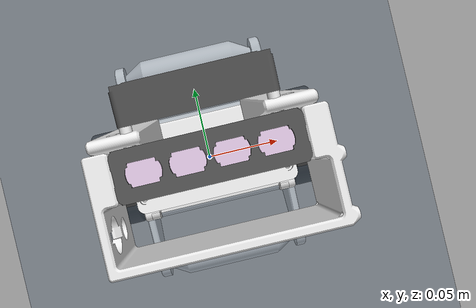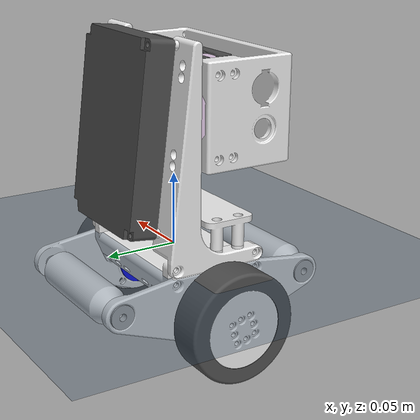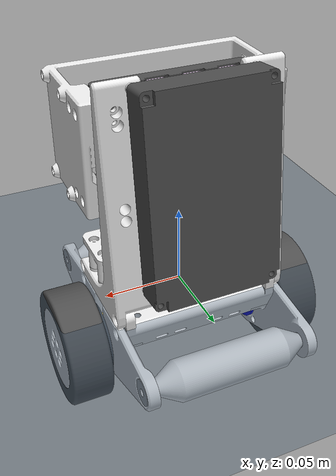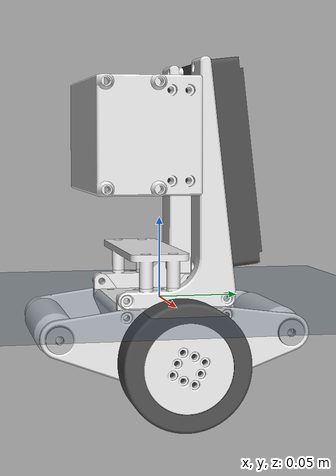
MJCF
<mujoco model="scene">
    <include file="robot.xml" />

    <visual>
        <headlight diffuse="0.6 0.6 0.6" ambient="0.3 0.3 0.3" specular="0 0 0" />
        <rgba haze="0.15 0.25 0.35 1" />
        <global azimuth="160" elevation="-20" />
    </visual>

    <asset>
        <texture type="skybox" builtin="gradient" rgb1="0.3 0.5 0.7" rgb2="0 0 0" width="512" height="3072" />
        <texture type="2d" name="groundplane" builtin="checker" mark="edge" rgb1="0.2 0.3 0.4" rgb2="0.1 0.2 0.3" markrgb="0.8 0.8 0.8" width="300" height="300" />
        <material name="groundplane" texture="groundplane" texuniform="true" texrepeat="5 5" reflectance="0.2" />
    </asset>

    <worldbody>
        <light pos="0 0 3.5" dir="0 0 -1" directional="true" />
        <geom name="floor" size="0 0 0.05" pos="0 0 0" type="plane" material="groundplane" />
    </worldbody>
</mujoco>
<mujoco model="scene">
    <include file="robot.xml" />

    <visual>
        <headlight diffuse="0.6 0.6 0.6" ambient="0.3 0.3 0.3" specular="0 0 0" />
        <rgba haze="0.15 0.25 0.35 1" />
        <global azimuth="160" elevation="-20" />
    </visual>

    <asset>
        <texture type="skybox" builtin="gradient" rgb1="0.3 0.5 0.7" rgb2="0 0 0" width="512"
            height="3072" />
        <texture type="2d" name="groundplane" builtin="checker" mark="edge" rgb1="0.2 0.3 0.4"
            rgb2="0.1 0.2 0.3"
            markrgb="0.8 0.8 0.8" width="300" height="300" />
        <material name="groundplane" texture="groundplane" texuniform="true" texrepeat="5 5"
            reflectance="0.2" />
    </asset>

    <worldbody>
        <light pos="0 0 3.5" dir="0 0 -1" directional="true" />
        <geom name="floor" size="0 0 0.05" pos="0 0 0" type="plane" material="groundplane" />
    </worldbody>
</mujoco>

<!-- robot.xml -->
<!-- Generated using onshape-to-robot -->
<!-- Onshape https://cad.onshape.com/documents/c31b75b69f86cba7a60e5fc7/w/78a9ece6d596751f738012d2/e/c7fa50fe5dc467a47ab74165 -->
<mujoco model="my-robot">
  <compiler angle="radian" meshdir="assets" autolimits="true"/>
  <default>
    <default class="my-robot">
      <joint frictionloss="0.1" armature="0.005"/>
      <position kp="50" dampratio="1"/>
      <default class="visual">
        <geom type="mesh" contype="0" conaffinity="0" group="2"/>
      </default>
      <default class="collision">
        <geom group="3"/>
      </default>
    </default>
  </default>
  <worldbody>
    <!-- Link base -->
    <body name="base" pos="0 0 0" quat="1 0 0 0" childclass="my-robot">
      <freejoint name="base_freejoint"/>
      <inertial pos="0 0 0.100941" mass="0.2" fullinertia="7.44667e-05 0.000195467 0.0001291 -0 -0 -0"/>
      <!-- Part right_mount -->
      <geom type="mesh" class="visual" pos="-0.055 0 -0.0299199" quat="-0 -0 0 1" mesh="right_mount" material="right_mount_material"/>
      <geom type="mesh" class="collision" pos="-0.055 0 -0.0299199" quat="-0 -0 0 1" mesh="right_mount" material="right_mount_material"/>
      <!-- Part bearing -->
      <geom type="mesh" class="visual" pos="-0.055 0 -0.0299199" quat="0 0 0 1" mesh="bearing" material="bearing_material"/>
      <geom type="mesh" class="collision" pos="-0.055 0 -0.0299199" quat="0 0 0 1" mesh="bearing" material="bearing_material"/>
      <!-- Part part_1 -->
      <geom type="mesh" class="visual" pos="0 -0.000288972 0.00708619" quat="0 0 0 1" mesh="part_1" material="part_1_material"/>
      <geom type="mesh" class="collision" pos="0 -0.000288972 0.00708619" quat="0 0 0 1" mesh="part_1" material="part_1_material"/>
      <!-- Part bearing_2 -->
      <geom type="mesh" class="visual" pos="-0.16 0 -0.0299199" quat="-0 -0 0 1" mesh="bearing" material="bearing_material"/>
      <geom type="mesh" class="collision" pos="-0.16 0 -0.0299199" quat="-0 -0 0 1" mesh="bearing" material="bearing_material"/>
      <!-- Part bearing_3 -->
      <geom type="mesh" class="visual" pos="-0.16 0.139 -0.0299199" quat="-0 -0 0 1" mesh="bearing" material="bearing_material"/>
      <geom type="mesh" class="collision" pos="-0.16 0.139 -0.0299199" quat="-0 -0 0 1" mesh="bearing" material="bearing_material"/>
      <!-- Part part_1_2 -->
      <geom type="mesh" class="visual" pos="0 0.0491338 0.086117" quat="0.52783 -0.470527 -0.470527 -0.52783" mesh="part_1__2" material="part_1__2_material"/>
      <geom type="mesh" class="collision" pos="0 0.0491338 0.086117" quat="0.52783 -0.470527 -0.470527 -0.52783" mesh="part_1__2" material="part_1__2_material"/>
      <!-- Part rightpillar -->
      <geom type="mesh" class="visual" pos="-0.055 0 -0.0299199" quat="-0 -0 0 1" mesh="rightpillar" material="rightpillar_material"/>
      <geom type="mesh" class="collision" pos="-0.055 0 -0.0299199" quat="-0 -0 0 1" mesh="rightpillar" material="rightpillar_material"/>
      <!-- Part mcu_platform -->
      <geom type="mesh" class="visual" pos="-0.055 0 -0.0299199" quat="0 -0 0 -1" mesh="mcu_platform" material="mcu_platform_material"/>
      <geom type="mesh" class="collision" pos="-0.055 0 -0.0299199" quat="0 -0 0 -1" mesh="mcu_platform" material="mcu_platform_material"/>
      <!-- Part bearing_4 -->
      <geom type="mesh" class="visual" pos="-0.055 0.139 -0.0299199" quat="0 0 0 1" mesh="bearing" material="bearing_material"/>
      <geom type="mesh" class="collision" pos="-0.055 0.139 -0.0299199" quat="0 0 0 1" mesh="bearing" material="bearing_material"/>
      <!-- Part leftpillar -->
      <geom type="mesh" class="visual" pos="-0.055 0 -0.0299199" quat="-0 -0 0 1" mesh="leftpillar" material="leftpillar_material"/>
      <geom type="mesh" class="collision" pos="-0.055 0 -0.0299199" quat="-0 -0 0 1" mesh="leftpillar" material="leftpillar_material"/>
      <!-- Part base -->
      <geom type="mesh" class="visual" pos="-0.055 0 -0.0299199" quat="0 0 0 1" mesh="base" material="base_material"/>
      <geom type="mesh" class="collision" pos="-0.055 0 -0.0299199" quat="0 0 0 1" mesh="base" material="base_material"/>
      <!-- Part left_mount -->
      <geom type="mesh" class="visual" pos="-0.055 0 -0.0299199" quat="-0 -0 0 1" mesh="left_mount" material="left_mount_material"/>
      <geom type="mesh" class="collision" pos="-0.055 0 -0.0299199" quat="-0 -0 0 1" mesh="left_mount" material="left_mount_material"/>
      <!-- Part part_1_3 -->
      <geom type="mesh" class="visual" pos="-0.033 0 0.0815252" quat="0 -1 -0 0" mesh="part_1__3" material="part_1__3_material"/>
      <geom type="mesh" class="collision" pos="-0.033 0 0.0815252" quat="0 -1 -0 0" mesh="part_1__3" material="part_1__3_material"/>
      <!-- Part 18650 -->
      <geom type="mesh" class="visual" pos="0.033 0 0.100941" quat="0 -0 0.707107 -0.707107" mesh="18650" material="18650_material"/>
      <geom type="mesh" class="collision" pos="0.033 0 0.100941" quat="0 -0 0.707107 -0.707107" mesh="18650" material="18650_material"/>
      <!-- Part part_1_4 -->
      <geom type="mesh" class="visual" pos="0.033 0 0.120357" quat="0 0 0 1" mesh="part_1__3" material="part_1__3_material"/>
      <geom type="mesh" class="collision" pos="0.033 0 0.120357" quat="0 0 0 1" mesh="part_1__3" material="part_1__3_material"/>
      <!-- Part 18650_2 -->
      <geom type="mesh" class="visual" pos="-0.033 0 0.100941" quat="0 -0 0.707107 -0.707107" mesh="18650" material="18650_material"/>
      <geom type="mesh" class="collision" pos="-0.033 0 0.100941" quat="0 -0 0.707107 -0.707107" mesh="18650" material="18650_material"/>
      <!-- Part 18650_3 -->
      <geom type="mesh" class="visual" pos="-0.011 0 0.100941" quat="0 -0 0.707107 -0.707107" mesh="18650" material="18650_material"/>
      <geom type="mesh" class="collision" pos="-0.011 0 0.100941" quat="0 -0 0.707107 -0.707107" mesh="18650" material="18650_material"/>
      <!-- Part 18650_4 -->
      <geom type="mesh" class="visual" pos="0.011 0 0.100941" quat="0 -0 0.707107 -0.707107" mesh="18650" material="18650_material"/>
      <geom type="mesh" class="collision" pos="0.011 0 0.100941" quat="0 -0 0.707107 -0.707107" mesh="18650" material="18650_material"/>
      <!-- Link wheelhub -->
      <body name="wheelhub" pos="0.055 0 -0.0299199" quat="0.470667 0.527705 0.470667 0.527705">
        <!-- Joint from base to wheelhub -->
        <joint axis="0 0 1" name="leftWheel" type="hinge"/>
        <inertial pos="0 0 0" mass="1e-09" fullinertia="1e-09 1e-09 1e-09 0 0 0"/>
        <!-- Part wheelhub -->
        <geom type="mesh" class="visual" pos="0 -0 -0.006" quat="0.620031 -0 0 0.784577" mesh="wheelhub" material="wheelhub_material"/>
        <geom type="mesh" class="collision" pos="0 -0 -0.006" quat="0.620031 -0 0 0.784577" mesh="wheelhub" material="wheelhub_material"/>
        <!-- Part tire -->
        <geom type="mesh" class="visual" pos="0 -0 -0.006" quat="0.620031 -0 0 0.784577" mesh="tire" material="tire_material"/>
        <geom type="mesh" class="collision" pos="0 -0 -0.006" quat="0.620031 -0 0 0.784577" mesh="tire" material="tire_material"/>
        <!-- Part standoff -->
        <geom type="mesh" class="visual" pos="0.0238995 -0.00989949 -0.0076" quat="1 -0 -0 -0" mesh="standoff" material="standoff_material"/>
        <geom type="mesh" class="collision" pos="0.0238995 -0.00989949 -0.0076" quat="1 -0 -0 -0" mesh="standoff" material="standoff_material"/>
        <!-- Part standoff_2 -->
        <geom type="mesh" class="visual" pos="-0.00410051 -0.00989949 -0.0076" quat="1 -0 -0 -0" mesh="standoff" material="standoff_material"/>
        <geom type="mesh" class="collision" pos="-0.00410051 -0.00989949 -0.0076" quat="1 -0 -0 -0" mesh="standoff" material="standoff_material"/>
        <!-- Part fixed -->
        <geom type="mesh" class="visual" pos="0 0 0" quat="1 -0 0 -0" mesh="fixed" material="fixed_material"/>
        <geom type="mesh" class="collision" pos="0 0 0" quat="1 -0 0 -0" mesh="fixed" material="fixed_material"/>
        <!-- Part pcb -->
        <geom type="mesh" class="visual" pos="0 0 -0.006" quat="0 -0.382683 0.92388 0" mesh="pcb" material="pcb_material"/>
        <geom type="mesh" class="collision" pos="0 0 -0.006" quat="0 -0.382683 0.92388 0" mesh="pcb" material="pcb_material"/>
        <!-- Part shaft -->
        <geom type="mesh" class="visual" pos="0 -0 0" quat="0.873079 -0 -0 0.487579" mesh="shaft" material="shaft_material"/>
        <geom type="mesh" class="collision" pos="0 -0 0" quat="0.873079 -0 -0 0.487579" mesh="shaft" material="shaft_material"/>
        <!-- Part standoff_3 -->
        <geom type="mesh" class="visual" pos="0.00989949 -0.0238995 -0.0076" quat="1 -0 -0 -0" mesh="standoff" material="standoff_material"/>
        <geom type="mesh" class="collision" pos="0.00989949 -0.0238995 -0.0076" quat="1 -0 -0 -0" mesh="standoff" material="standoff_material"/>
        <!-- Part standoff_4 -->
        <geom type="mesh" class="visual" pos="0.00989949 0.00410051 -0.0076" quat="1 -0 -0 -0" mesh="standoff" material="standoff_material"/>
        <geom type="mesh" class="collision" pos="0.00989949 0.00410051 -0.0076" quat="1 -0 -0 -0" mesh="standoff" material="standoff_material"/>
      </body>
      <!-- Link 4015_motor_assembly -->
      <body name="4015_motor_assembly" pos="-0.055 0 -0.0299199" quat="0 -0.707107 -0 -0.707107">
        <!-- Joint from base to 4015_motor_assembly -->
        <joint axis="0 0 1" name="rightWheel" type="hinge"/>
        <inertial pos="0 0 0" mass="1e-09" fullinertia="1e-09 1e-09 1e-09 0 0 0"/>
        <!-- Part wheelhub_2 -->
        <geom type="mesh" class="visual" pos="-0 0 0.006" quat="0 -0.969521 -0.245007 0" mesh="wheelhub" material="wheelhub_material"/>
        <geom type="mesh" class="collision" pos="-0 0 0.006" quat="0 -0.969521 -0.245007 0" mesh="wheelhub" material="wheelhub_material"/>
        <!-- Part tire_2 -->
        <geom type="mesh" class="visual" pos="-0 0 0.006" quat="0 -0.969521 -0.245007 0" mesh="tire" material="tire_material"/>
        <geom type="mesh" class="collision" pos="-0 0 0.006" quat="0 -0.969521 -0.245007 0" mesh="tire" material="tire_material"/>
        <!-- Part standoff_5 -->
        <geom type="mesh" class="visual" pos="0.0238995 0.00989949 0.0076" quat="0 -1 -0 -0" mesh="standoff" material="standoff_material"/>
        <geom type="mesh" class="collision" pos="0.0238995 0.00989949 0.0076" quat="0 -1 -0 -0" mesh="standoff" material="standoff_material"/>
        <!-- Part standoff_6 -->
        <geom type="mesh" class="visual" pos="-0.00410051 0.00989949 0.0076" quat="0 -1 -0 -0" mesh="standoff" material="standoff_material"/>
        <geom type="mesh" class="collision" pos="-0.00410051 0.00989949 0.0076" quat="0 -1 -0 -0" mesh="standoff" material="standoff_material"/>
        <!-- Part fixed_2 -->
        <geom type="mesh" class="visual" pos="0 0 0" quat="0 1 0 0" mesh="fixed" material="fixed_material"/>
        <geom type="mesh" class="collision" pos="0 0 0" quat="0 1 0 0" mesh="fixed" material="fixed_material"/>
        <!-- Part pcb_2 -->
        <geom type="mesh" class="visual" pos="0 -0 0.006" quat="0.382683 -0 0 0.92388" mesh="pcb" material="pcb_material"/>
        <geom type="mesh" class="collision" pos="0 -0 0.006" quat="0.382683 -0 0 0.92388" mesh="pcb" material="pcb_material"/>
        <!-- Part shaft_2 -->
        <geom type="mesh" class="visual" pos="-0 0 0" quat="0 0.597377 -0.801961 -0" mesh="shaft" material="shaft_material"/>
        <geom type="mesh" class="collision" pos="-0 0 0" quat="0 0.597377 -0.801961 -0" mesh="shaft" material="shaft_material"/>
        <!-- Part standoff_7 -->
        <geom type="mesh" class="visual" pos="0.00989949 0.0238995 0.0076" quat="0 -1 -0 -0" mesh="standoff" material="standoff_material"/>
        <geom type="mesh" class="collision" pos="0.00989949 0.0238995 0.0076" quat="0 -1 -0 -0" mesh="standoff" material="standoff_material"/>
        <!-- Part standoff_8 -->
        <geom type="mesh" class="visual" pos="0.00989949 -0.00410051 0.0076" quat="0 -1 -0 -0" mesh="standoff" material="standoff_material"/>
        <geom type="mesh" class="collision" pos="0.00989949 -0.00410051 0.0076" quat="0 -1 -0 -0" mesh="standoff" material="standoff_material"/>
      </body>
      <!-- Link roller -->
      <body name="roller" pos="-0.05 0.0695 -0.0163521" quat="0.5 0.5 -0.5 -0.5">
        <!-- Joint from base to roller -->
        <joint axis="0 0 1" name="passive_rear" type="hinge"/>
        <inertial pos="0 0 0" mass="1e-09" fullinertia="1e-09 1e-09 1e-09 0 0 0"/>
        <!-- Part roller -->
        <geom type="mesh" class="visual" pos="0.0695 -0.0135677 0.0055" quat="0.5 -0.5 -0.5 -0.5" mesh="roller" material="roller_material"/>
        <geom type="mesh" class="collision" pos="0.0695 -0.0135677 0.0055" quat="0.5 -0.5 -0.5 -0.5" mesh="roller" material="roller_material"/>
      </body>
      <!-- Link roller_2 -->
      <body name="roller_2" pos="-0.05 -0.0695 -0.0163521" quat="0.689053 -0.158762 -0.689053 0.158762">
        <!-- Joint from base to roller_2 -->
        <joint axis="0 0 1" name="passive_front" type="hinge"/>
        <inertial pos="0 0 0" mass="1e-09" fullinertia="1e-09 1e-09 1e-09 0 0 0"/>
        <!-- Part roller_2 -->
        <geom type="mesh" class="visual" pos="0.0695 -0.0135677 0.0055" quat="0.5 -0.5 -0.5 -0.5" mesh="roller" material="roller_material"/>
        <geom type="mesh" class="collision" pos="0.0695 -0.0135677 0.0055" quat="0.5 -0.5 -0.5 -0.5" mesh="roller" material="roller_material"/>
      </body>
    </body>
  </worldbody>
  <asset>
    <mesh file="part_1.stl"/>
    <mesh file="shaft.stl"/>
    <mesh file="part_1__2.stl"/>
    <mesh file="18650.stl"/>
    <mesh file="wheelhub.stl"/>
    <mesh file="mcu_platform.stl"/>
    <mesh file="right_mount.stl"/>
    <mesh file="base.stl"/>
    <mesh file="standoff.stl"/>
    <mesh file="fixed.stl"/>
    <mesh file="roller.stl"/>
    <mesh file="rightpillar.stl"/>
    <mesh file="tire.stl"/>
    <mesh file="leftpillar.stl"/>
    <mesh file="part_1__3.stl"/>
    <mesh file="pcb.stl"/>
    <mesh file="bearing.stl"/>
    <mesh file="left_mount.stl"/>
    <material name="right_mount_material" rgba="0.917647 0.917647 0.917647 1"/>
    <material name="bearing_material" rgba="0.701961 0.701961 0.701961 1"/>
    <material name="part_1_material" rgba="0.917647 0.917647 0.917647 1"/>
    <material name="part_1__2_material" rgba="0.301961 0.301961 0.301961 1"/>
    <material name="rightpillar_material" rgba="0.917647 0.917647 0.917647 1"/>
    <material name="mcu_platform_material" rgba="0.917647 0.917647 0.917647 1"/>
    <material name="leftpillar_material" rgba="0.917647 0.917647 0.917647 1"/>
    <material name="base_material" rgba="0.917647 0.917647 0.917647 1"/>
    <material name="left_mount_material" rgba="0.917647 0.917647 0.917647 1"/>
    <material name="part_1__3_material" rgba="0.301961 0.301961 0.301961 1"/>
    <material name="18650_material" rgba="0.85098 0.756863 0.866667 1"/>
    <material name="wheelhub_material" rgba="0.917647 0.917647 0.917647 1"/>
    <material name="tire_material" rgba="0.301961 0.301961 0.301961 1"/>
    <material name="standoff_material" rgba="0.960784 0.835294 0.470588 1"/>
    <material name="fixed_material" rgba="0.262745 0.282353 0.301961 1"/>
    <material name="pcb_material" rgba="0 0 1 1"/>
    <material name="shaft_material" rgba="0.262745 0.282353 0.301961 1"/>
    <material name="roller_material" rgba="0.917647 0.917647 0.917647 1"/>
  </asset>
  <actuator>
    <position class="my-robot" name="leftWheel" joint="leftWheel"/>
    <position class="my-robot" name="rightWheel" joint="rightWheel"/>
    <position class="my-robot" name="passive_rear" joint="passive_rear"/>
    <position class="my-robot" name="passive_front" joint="passive_front"/>
  </actuator>
  <equality/>
</mujoco>
